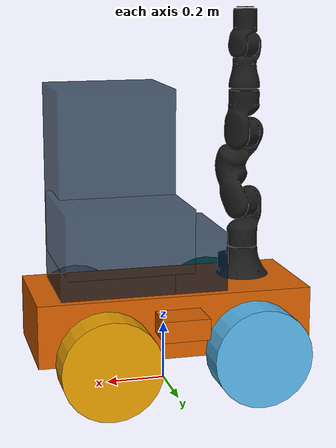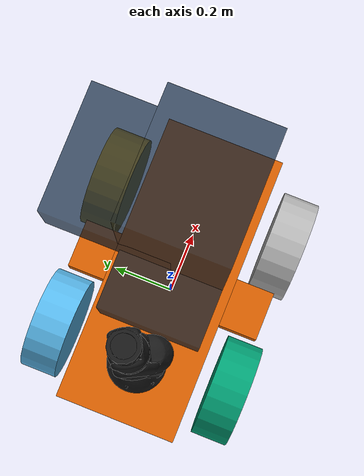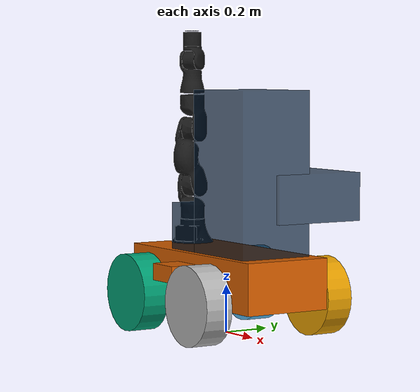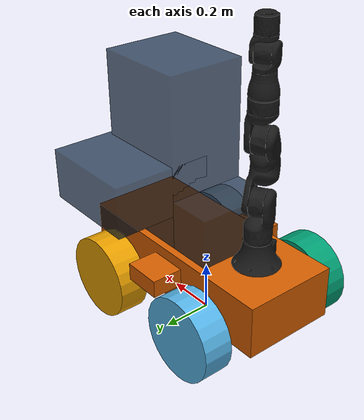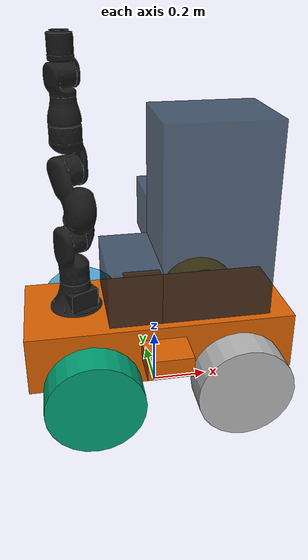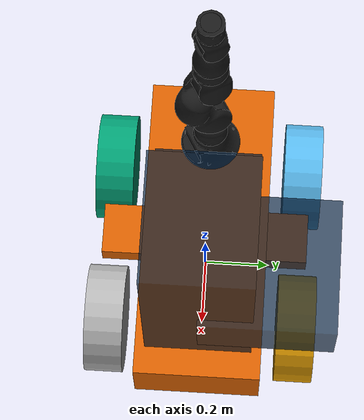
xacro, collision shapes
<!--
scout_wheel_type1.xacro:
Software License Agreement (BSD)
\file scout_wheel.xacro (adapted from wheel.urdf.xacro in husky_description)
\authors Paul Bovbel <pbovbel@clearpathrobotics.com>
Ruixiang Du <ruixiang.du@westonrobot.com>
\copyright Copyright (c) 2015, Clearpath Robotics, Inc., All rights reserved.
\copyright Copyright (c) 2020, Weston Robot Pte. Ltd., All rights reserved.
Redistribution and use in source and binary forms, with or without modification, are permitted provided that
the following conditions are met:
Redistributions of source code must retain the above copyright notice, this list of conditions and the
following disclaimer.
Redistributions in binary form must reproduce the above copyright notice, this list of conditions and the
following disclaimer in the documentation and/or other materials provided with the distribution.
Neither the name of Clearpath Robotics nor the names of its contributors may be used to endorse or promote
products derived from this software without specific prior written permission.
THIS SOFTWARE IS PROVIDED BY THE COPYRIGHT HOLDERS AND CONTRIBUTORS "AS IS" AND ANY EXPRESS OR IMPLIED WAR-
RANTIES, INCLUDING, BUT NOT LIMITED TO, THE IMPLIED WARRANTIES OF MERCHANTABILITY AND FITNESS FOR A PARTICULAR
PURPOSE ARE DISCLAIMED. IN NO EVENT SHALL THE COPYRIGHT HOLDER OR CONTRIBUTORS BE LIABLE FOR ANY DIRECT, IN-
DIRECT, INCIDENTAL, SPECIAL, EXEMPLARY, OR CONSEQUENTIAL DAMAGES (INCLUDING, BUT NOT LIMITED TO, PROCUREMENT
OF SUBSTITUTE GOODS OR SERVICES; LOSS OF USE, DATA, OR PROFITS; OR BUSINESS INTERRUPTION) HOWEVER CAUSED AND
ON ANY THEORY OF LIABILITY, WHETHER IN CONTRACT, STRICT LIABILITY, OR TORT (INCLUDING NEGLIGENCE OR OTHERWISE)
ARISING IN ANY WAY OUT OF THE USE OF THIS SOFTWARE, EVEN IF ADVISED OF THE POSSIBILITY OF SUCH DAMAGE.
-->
<?xml version="1.0"?>
<robot xmlns:xacro="http://www.ros.org/wiki/xacro" name="igus_rebel">

	<!-- Scout base selection -->
	<xacro:arg name="load_base" default="true" />

	<!-- Mount selection -->
	<xacro:arg name="mount" default="none" />

	<!-- Camera type selection -->
	<xacro:arg name="camera" default="none" />

	<!-- End effector type selection -->
	<xacro:arg name="end_effector" default="none" />

	<!-- Gazebo version -->
	<xacro:arg name="load_gazebo" default="false" />

	<!-- Controller settings, only enable a single one in the launch file -->
	<xacro:arg name="hardware_protocol" default="simulation" />

	<!-- Argument that tells if Moveit2 is used or not -->
	<xacro:arg name="moveit" default="false" />

	<!-- odometry source: world ground truth or wheels encoders -->
	<xacro:arg name="odometry_source" default="ground_truth" />

	<!-- Set both at 0.0 if collapsing is not interested in gazebo -->
	<xacro:property name="damping" value="0.0" />
	<xacro:property name="friction" value="0.0" />

	<!-- Load mobile robot base, load_base must be true -->
	<xacro:if value="$(arg load_base)">

		<!-- virtual joints acting as a link between base_link and igus_rebel_base_link -->
		<joint name="base_link_to_rebel_support" type="fixed">
			<parent link="base_link" />
			<child link="rebel_support" />
			<origin xyz="-0.28 0.0 0.125" rpy="0 0 ${pi}" />
		</joint>

		<link name="rebel_support" />

		<joint name="rebel_support_to_igus_rebel" type="fixed">
			<parent link="rebel_support" />
			<child link="igus_rebel_base_link" />
			<origin xyz="0.0 0.0 0.0" rpy="0 0 ${-pi/3}" />
		</joint>

		<!-- castle with tower mounting sensors, batteries, computer and everyhting else,
		attached to mobile_robot_base_link
		set with_basket to false to remove the extra box on the tower
		-->
		<xacro:include filename="$(find igus_rebel_description_ros2)/urdf/mobile_robot/castle.urdf" />
		<xacro:castle with_basket="true" />

		<!-- load scout robot -->
		<xacro:include
			filename="$(find agilex_scout)/urdf/mobile_robot/scout_v2.urdf.xacro" />
		<xacro:scout_v2
			load_gazebo="$(arg load_gazebo)" odometry_source="$(arg odometry_source)" />

	</xacro:if>

	<!-- Add base_link attachment when no mobile robot is loaded -->
	<xacro:unless value="$(arg load_base)">

		<link name="base_link" />
		<joint name="base_link_to_igus_rebel" type="fixed">
			<parent link="base_link" />
			<child link="igus_rebel_base_link" />
			<origin xyz="0.0 0.0 0.0" rpy="0.0 0.0 0.0" />
		</joint>

	</xacro:unless>

	<!-- load igus rebel with camera gripper and castle -->
	<xacro:include
		filename="$(find igus_rebel_description_ros2)/urdf/igus_rebel/igus_rebel.urdf.xacro" />
	<xacro:igus_rebel
		load_base="$(arg load_base)" mount="$(arg mount)" camera="$(arg camera)"
		end_effector="$(arg end_effector)" hardware_protocol="$(arg hardware_protocol)"
		load_gazebo="$(arg load_gazebo)" moveit="$(arg moveit)" />

</robot>

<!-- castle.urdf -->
<robot name="scout_v2" xmlns:xacro="http://ros.org/wiki/xacro">

	<xacro:macro name="castle" params="with_basket">

		<joint name="tower" type="fixed">
			<parent link="mobile_robot_base_link" />
			<child link="tower_link" />
			<origin rpy="0.0 0.0 0" xyz="0.0 0.0 0.1" />
			<axis xyz="0 0 -1" />
		</joint>

		<material name="dark_blue">
			<color rgba="0.0 ${25/255} ${51/255} 0.7" />
		</material>

		<link name="tower_link">
			<inertial>
				<mass value="1" />
				<inertia ixx="1" ixy="1" ixz="1" iyy="0" iyz="0" izz="0" />
			</inertial>
			<visual>
				<origin xyz="0.19 0.0 0.345" rpy="0.0 0.0 0.0" />
				<geometry>
					<box size="0.38 0.32 0.69" />
				</geometry>
				<material name="dark_blue" />
			</visual>
			<visual>
				<origin xyz="-0.09 0.0 0.105" rpy="0.0 0.0 0.0" />
				<geometry>
					<box size="0.18 0.32 0.21" />
				</geometry>
				<material name="dark_blue" />
			</visual>
			<collision>
				<origin xyz="0.19 0.0 0.345" rpy="0.0 0.0 0.0" />
				<geometry>
					<box size="0.38 0.32 0.69" />
				</geometry>
			</collision>
			<collision>
				<origin xyz="-0.09 0.0 0.105" rpy="0.0 0.0 0.0" />
				<geometry>
					<box size="0.18 0.32 0.21" />
				</geometry>
			</collision>
		</link>

		<xacro:if value="${with_basket}">

			<!-- add basket -->
			<joint name="basket_joint" type="fixed">
				<parent link="tower_link" />
				<child link="basket_link" />
				<origin rpy="0.0 0.0 0" xyz="0.2 0.2 0.25" />
				<axis xyz="0 0 -1" />
			</joint>

			<link name="basket_link">
				<inertial>
					<mass value="1" />
					<inertia ixx="1" ixy="1" ixz="1" iyy="0" iyz="0" izz="0" />
				</inertial>
				<visual>
					<origin xyz="0.0 0.0 0.0" rpy="0.0 0.0 0.0" />
					<geometry>
						<box size="0.4 0.4 0.2" />
					</geometry>
					<material name="dark_blue" />
				</visual>
				<collision>
					<origin xyz="0.0 0.0 0.0" rpy="0.0 0.0 0.0" />
					<geometry>
						<box size="0.4 0.4 0.2" />
					</geometry>
				</collision>
			</link>
		</xacro:if>

	</xacro:macro>

</robot>

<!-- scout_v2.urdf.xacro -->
<robot name="scout_v2" xmlns:xacro="http://ros.org/wiki/xacro">

	<xacro:macro name="scout_v2" params="odometry_source load_gazebo">

		<!-- Variables -->

		<!-- Collision boxes geometries -->
		<xacro:property name="base_x_size" value="0.9250000" />
		<xacro:property name="base_y_size" value="0.380000" />
		<xacro:property name="base_z_size" value="0.210000" />

		<!-- vehicle geometries -->
		<xacro:property name="wheelbase" value="0.498" />
		<xacro:property name="track" value="0.58306" />
		<xacro:property name="wheel_vertical_offset" value="-0.0702" />

		<xacro:property name="wheel_length" value="1.1653e-01" />
		<xacro:property name="wheel_radius" value="1.6459e-01" />

		<!-- virtual joints to link to ground and to odom -->
		<link name="base_footprint" />

		<joint name="base_footprint_to_base_link" type="fixed">
			<origin xyz="0 0 ${wheel_radius - wheel_vertical_offset}" rpy="0 0 0" />
			<parent link="base_footprint" />
			<child link="base_link" />
		</joint>

		<link name="base_link" />

		<joint name="base_link_to_mobile_robot" type="fixed">
			<origin xyz="0 0 0" rpy="0 0 0" />
			<parent link="base_link" />
			<child link="mobile_robot_base_link" />
		</joint>

		<!-- Base link -->
		<link name="mobile_robot_base_link">
			<visual>
				<origin xyz="0 0 0" rpy="0 0 0" />
				<geometry>
					<mesh
						filename="file://$(find agilex_scout)/meshes/mobile_robot/mobile_robot_base_link.dae" />
				</geometry>
			</visual>
			<collision>
				<origin xyz="0 0 0.008" rpy="0 0 0" />
				<geometry>
					<box size="${base_x_size} ${base_y_size} ${base_z_size}" />
				</geometry>
			</collision>
			<collision>
				<origin xyz="0 0 ${base_z_size/6}" rpy="0 0 0" />
				<geometry>
					<box size="${base_x_size/6} ${base_y_size*1.65} ${base_z_size/3}" />
				</geometry>
			</collision>
		</link>

		<link name="inertial_link">
			<inertial>
				<mass value="50" />
				<origin xyz="0.0 0.0 0.0" />
				<inertia ixx="2.288641" ixy="0" ixz="0" iyy="5.103976" iyz="0" izz="3.431465" />
			</inertial>
		</link>

		<joint name="inertial_joint" type="fixed">
			<origin xyz="0 0 0" rpy="0 0 0" />
			<parent link="mobile_robot_base_link" />
			<child link="inertial_link" />
		</joint>

		<!-- Scout wheel macros -->
		<xacro:include filename="$(find agilex_scout)/urdf/mobile_robot/scout_wheel_type1.xacro" />
		<xacro:include filename="$(find agilex_scout)/urdf/mobile_robot/scout_wheel_type2.xacro" />
		<!-- wheel labeled from 0 to 3, conter-clockwise, starting from front right wheel -->
		<!-- motor 1 and 2 (left side) are mechanically installed in a reversed direction -->
		<xacro:scout_wheel_type1 wheel_prefix="front_right" x="${wheelbase/2}" y="${-track/2}"
			z="${wheel_vertical_offset}" phi="0" />

		<xacro:scout_wheel_type2 wheel_prefix="front_left" x="${wheelbase/2}" y="${track/2}"
			z="${wheel_vertical_offset}" phi="0" />

		<xacro:scout_wheel_type1 wheel_prefix="rear_left" x="${-wheelbase/2}" y="${track/2}"
			z="${wheel_vertical_offset}" phi="0" />

		<xacro:scout_wheel_type2 wheel_prefix="rear_right" x="${-wheelbase/2}" y="${-track/2}"
			z="${wheel_vertical_offset}" phi="0" />

		<link name="front_mount" />

		<joint name="front_mount_joint" type="fixed">
			<origin xyz="0.325 0.0 0.112701" rpy="0 0 0" />
			<parent link="mobile_robot_base_link" />
			<child link="front_mount" />
		</joint>

		<link name="rear_mount" />

		<joint name="rear_mount_joint" type="fixed">
			<origin xyz="-0.325 0.0 0.112701" rpy="0 0 0" />
			<parent link="mobile_robot_base_link" />
			<child link="rear_mount" />
		</joint>

		<!-- Gazebo definitions  -->
		<xacro:if value="${load_gazebo}">
			<xacro:include filename="$(find agilex_scout)/urdf/mobile_robot/scout_v2.gazebo" />
		</xacro:if>

	</xacro:macro>

</robot>

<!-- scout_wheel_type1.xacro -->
<robot xmlns:xacro="http://ros.org/wiki/xacro" name="scout_v2">

	<xacro:macro name="scout_wheel_type1" params="wheel_prefix x y z phi">

		<link name="${wheel_prefix}_wheel_link">
			<inertial>
				<mass value="8" />
				<origin xyz="0 0 0" />
				<inertia ixx="0.1171" ixy="0" ixz="0" iyy="0.1361" iyz="0" izz="0.1171" />
			</inertial>
			<visual>
				<origin xyz="0 0 0" rpy="0 0 0" />
				<geometry>
					<mesh filename="file://$(find agilex_scout)/meshes/mobile_robot/wheel_type1.dae" />
				</geometry>
			</visual>
			<collision>
				<origin xyz="0 0 0" rpy="${pi/2} 0 0" />
				<geometry>
					<cylinder length="${wheel_length}" radius="${wheel_radius}" />
				</geometry>
				<surface>
					<contact>
						<ode>
							<min_depth>0.001</min_depth>
							<kp>1000000000.0</kp>
							<kd>0.0</kd>
						</ode>
					</contact>
					<friction>
						<ode>
							<mu>0.9</mu>
							<mu2>0.7</mu2>
							<fdir1>1 0 0</fdir1>
						</ode>
					</friction>
				</surface>
			</collision>
		</link>

		<!-- if gazebo is loaded, simulate the robot wheel rotations and broadcast the join states-->
		<xacro:if value="$(arg load_gazebo)">
			<joint name="${wheel_prefix}_wheel" type="continuous">
				<parent link="mobile_robot_base_link" />
				<child link="${wheel_prefix}_wheel_link" />
				<origin xyz="${x} ${y} ${z}" rpy="${phi} 0.0 0.0" />
				<axis xyz="0 1 0" rpy="0 0 0" />
				<dynamics damping="0.0" friction="20" />
			</joint>
		</xacro:if>

		<!-- if real robot is loaded, fixed wheels are used because no joint broadcasters are available -->
		<xacro:unless value="$(arg load_gazebo)">
			<joint name="${wheel_prefix}_wheel" type="fixed">
				<parent link="mobile_robot_base_link" />
				<child link="${wheel_prefix}_wheel_link" />
				<origin xyz="${x} ${y} ${z}" rpy="${phi} 0.0 0.0" />
				<axis xyz="0 1 0" rpy="0 0 0" />
			</joint>
		</xacro:unless>

	</xacro:macro>

</robot>

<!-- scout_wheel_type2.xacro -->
<robot xmlns:xacro="http://ros.org/wiki/xacro" name="scout_v2">

	<xacro:macro name="scout_wheel_type2" params="wheel_prefix x y z phi">

		<link name="${wheel_prefix}_wheel_link">
			<inertial>
				<mass value="8" />
				<origin xyz="0 0 0" />
				<inertia ixx="0.1171" ixy="0" ixz="0" iyy="0.1361" iyz="0" izz="0.1171" />
			</inertial>
			<visual>
				<origin xyz="0 0 0" rpy="0 0 0" />
				<geometry>
					<mesh filename="file://$(find agilex_scout)/meshes/mobile_robot/wheel_type2.dae" />
				</geometry>
			</visual>
			<collision>
				<origin xyz="0 0 0" rpy="${pi/2} 0 0" />
				<geometry>
					<cylinder length="${wheel_length}" radius="${wheel_radius}" />
				</geometry>
				<surface>
					<contact>
						<ode>
							<min_depth>0.001</min_depth>
							<kp>1000000000.0</kp>
							<kd>0.0</kd>
						</ode>
					</contact>
					<friction>
						<ode>
							<mu>0.9</mu>
							<mu2>0.7</mu2>
							<fdir1>1 0 0</fdir1>
						</ode>
					</friction>
				</surface>
			</collision>
		</link>

		<!-- if gazebo is loaded, simulate the robot wheel rotations and broadcast the join states-->
		<xacro:if value="$(arg load_gazebo)">
			<joint name="${wheel_prefix}_wheel" type="continuous">
				<parent link="mobile_robot_base_link" />
				<child link="${wheel_prefix}_wheel_link" />
				<origin xyz="${x} ${y} ${z}" rpy="${phi} 0.0 0.0" />
				<axis xyz="0 1 0" rpy="0 0 0" />
				<dynamics damping="0.0" friction="20" />
			</joint>
		</xacro:if>

		<!-- if real robot is loaded, fixed wheels are used because no joint broadcasters are available -->
		<xacro:unless value="$(arg load_gazebo)">
			<joint name="${wheel_prefix}_wheel" type="fixed">
				<parent link="mobile_robot_base_link" />
				<child link="${wheel_prefix}_wheel_link" />
				<origin xyz="${x} ${y} ${z}" rpy="${phi} 0.0 0.0" />
				<axis xyz="0 1 0" rpy="0 0 0" />
			</joint>
		</xacro:unless>

	</xacro:macro>

</robot>

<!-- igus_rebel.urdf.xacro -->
<robot xmlns:xacro="http://www.ros.org/wiki/xacro" name="igus_rebel">

	<!-- macro definition for the robot -->
	<xacro:macro name="igus_rebel" params="hardware_protocol load_gazebo moveit">
<!--		params="load_base mount camera end_effector hardware_protocol load_gazebo moveit">-->

		<!-- Gazebo macro -->
		<xacro:if value="${load_gazebo}">

			<xacro:include
					filename="$(find igus_rebel_description_ros2)/urdf/igus_rebel/igus_rebel.gazebo.xacro" />

			<!-- The plugin that control the robot in Ignition is loaded if Moveit2 will be used.
			The Moveit2 controller configuration file is directly passed as a parameter to this plugin -->
			<xacro:if value="${moveit}">
				<xacro:ign_ros2_control
						controller_parameters="$(find igus_rebel_moveit_config)/config/gazebo_controllers.yaml" />
			</xacro:if>

			<!-- The joint state publisher and the joint position controller are loaded if Moveit2
			is not used	because the robot is controllable directly from Ignition if some movement are needed -->
			<xacro:unless value="${moveit}">
				<xacro:ign_joint_state_publisher />
				<xacro:ign_joint_position_controller />
			</xacro:unless>

			<!--			&lt;!&ndash; The sensors used in Ignition are loaded only if a camera is attached &ndash;&gt;-->
			<!--				&lt;!&ndash; Since there is already a sensor plugin in the scout, if the scout is loaded-->
			<!--				the sensor plugin of the igus rebel is not loaded (temporary solution) &ndash;&gt;-->

		</xacro:if>

		<!-- Include and call rebel macro -->
		<xacro:include
			filename="$(find igus_rebel_description_ros2)/urdf/igus_rebel/igus_rebel.description.xacro" />
		<xacro:igus_rebel_description />

		<!-- controller macro -->
		<xacro:include
			filename="$(find igus_rebel_description_ros2)/urdf/igus_rebel/igus_rebel.control.xacro" />
		<xacro:igus_rebel_control hardware_protocol="${hardware_protocol}" />

<!--		&lt;!&ndash; Mount macros &ndash;&gt;-->

<!--		&lt;!&ndash; Camera macro &ndash;&gt;-->

	</xacro:macro>

</robot>

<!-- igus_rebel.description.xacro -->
<robot xmlns:xacro="http://www.ros.org/wiki/xacro" name="igus_rebel">

	<material name="dark_grey">
		<color rgba="${25/255.0} ${25/255.0} ${25/255.0} 1.000" />
	</material>

	<xacro:macro name="igus_rebel_description">
		<!-- Set both at 0.0 if collapsing is not interesting in gazebo -->
		<xacro:property name="damping" value="0.0" />
		<xacro:property name="friction" value="0.0" />

		<link name="igus_rebel_base_link">
			<visual>
				<geometry>
					<mesh
						filename="file://$(find igus_rebel_description_ros2)/meshes/igus_rebel/Joint0.dae" />
				</geometry>
				<material name="dark_grey" />
			</visual>
			<collision>
				<geometry>
					<mesh
						filename="file://$(find igus_rebel_description_ros2)/meshes/igus_rebel_mod/Joint0.stl"
						scale="0.0001 0.0001 0.0001" />
				</geometry>
			</collision>
			<inertial>
				<mass value="1.0" />
				<inertia ixx="1.0" ixy="0.0" ixz="0.0" iyy="1.0" iyz="0.0" izz="1.0" />
			</inertial>
		</link>

		<joint name="joint1" type="revolute">
			<parent link="igus_rebel_base_link" />
			<child link="link_1" />
			<origin rpy="0.0 0.0 0.0" xyz="0.0 0 0.103" />
			<axis xyz="0 0 1" />
			<limit effort="330.0" lower="${-pi*179/180}" upper="${pi*179/180}" velocity="${pi/4.0}" />
			<dynamics damping="${damping}" friction="${friction}" />
		</joint>
		<link name="link_1">
			<visual>
				<geometry>
					<mesh
						filename="file://$(find igus_rebel_description_ros2)/meshes/igus_rebel/Joint1.dae" />
				</geometry>
				<origin rpy="0 0 0" xyz="0 0 0" />
				<material name="dark_grey" />
			</visual>
			<collision>
				<geometry>
					<mesh
						filename="file://$(find igus_rebel_description_ros2)/meshes/igus_rebel_mod/Joint1.stl"
						scale="0.0001 0.0001 0.0001" />
				</geometry>
				<origin rpy="0 0 0" xyz="0 0 0" />
			</collision>
			<inertial>
				<mass value="0.1" />
				<inertia ixx="0.03" ixy="0.0" ixz="0.0" iyy="0.03" iyz="0.0" izz="0.03" />
			</inertial>
		</link>

		<joint name="joint2" type="revolute">
			<parent link="link_1" />
			<child link="link_2" />
			<origin rpy="0.0 0.0 0.0" xyz="0.0 0 0.149" />
			<axis xyz="0 1 0" />
			<limit effort="330.0" lower="${-pi*80/180}" upper="${pi*140/180}" velocity="${pi/4.0}" />
			<dynamics damping="${damping}" friction="${friction}" />
		</joint>

		<link name="link_2">
			<visual>
				<geometry>
					<mesh
						filename="file://$(find igus_rebel_description_ros2)/meshes/igus_rebel/Joint2.dae" />
				</geometry>
				<origin rpy="0 0 0" xyz="0 0 0" />
				<material name="dark_grey" />
			</visual>
			<collision>
				<geometry>
					<mesh
						filename="file://$(find igus_rebel_description_ros2)/meshes/igus_rebel_mod/Joint2.stl"
						scale="0.0001 0.0001 0.0001" />
				</geometry>
				<origin rpy="0 0 0" xyz="0 0 0" />
			</collision>
			<inertial>
				<mass value="0.1" />
				<inertia ixx="0.03" ixy="0.0" ixz="0.0" iyy="0.03" iyz="0.0" izz="0.03" />
			</inertial>
		</link>

		<joint name="joint3" type="revolute">
			<parent link="link_2" />
			<child link="link_5" />
			<origin rpy="0.0 0.0 0.0" xyz="0.0 0.0 0.2384" />
			<axis xyz="0 1 0" />
			<limit effort="330.0" lower="${-pi*80/180}" upper="${pi*140/180}" velocity="${pi/4.0}" />
			<dynamics damping="${damping}" friction="${friction}" />
		</joint>

		<link name="link_5">
			<visual>
				<geometry>
					<mesh
						filename="file://$(find igus_rebel_description_ros2)/meshes/igus_rebel/Joint3.dae" />
				</geometry>
				<origin rpy="0 0 0" xyz="0 0 0" />
				<material name="dark_grey" />
			</visual>
			<collision>
				<geometry>
					<mesh
						filename="file://$(find igus_rebel_description_ros2)/meshes/igus_rebel_mod/Joint3.stl"
						scale="0.0001 0.0001 0.0001" />
				</geometry>
				<origin rpy="0 0 0" xyz="0 0 0" />
			</collision>
			<inertial>
				<mass value="0.1" />
				<inertia ixx="0.03" ixy="0.0" ixz="0.0" iyy="0.03" iyz="0.0" izz="0.03" />
			</inertial>
		</link>

		<joint name="joint4" type="revolute">
			<parent link="link_5" />
			<child link="link_6" />
			<origin rpy="0.0 0.0 0.0" xyz="0.0 0.0 0.127" />
			<axis xyz="0 0 1" />
			<limit effort="330.0" lower="${-pi*179/180}" upper="${pi*179/180}" velocity="${pi/4.0}" />
			<dynamics damping="${damping}" friction="${friction}" />
		</joint>

		<link name="link_6">
			<visual>
				<geometry>
					<mesh
						filename="file://$(find igus_rebel_description_ros2)/meshes/igus_rebel/Joint4.dae" />
				</geometry>
				<origin rpy="0 0 0" xyz="0 0 0" />
				<material name="dark_grey" />
			</visual>
			<collision>
				<geometry>
					<mesh
						filename="file://$(find igus_rebel_description_ros2)/meshes/igus_rebel_mod/Joint4.stl"
						scale="0.0001 0.0001 0.0001" />
				</geometry>
				<origin rpy="0 0 0" xyz="0 0 0" />
			</collision>
			<inertial>
				<mass value="0.1" />
				<inertia ixx="0.03" ixy="0.0" ixz="0.0" iyy="0.03" iyz="0.0" izz="0.03" />
			</inertial>
		</link>

		<joint name="joint5" type="revolute">
			<parent link="link_6" />
			<child link="link_7" />
			<origin rpy="0.0 0.0 0.0" xyz="0.0 0 ${0.14 + 0.03}" />
			<axis xyz="0 1 0" />
			<limit effort="330.0" lower="${-pi/2.0}" upper="${pi/2.0}" velocity="${pi/4.0}" />
			<dynamics damping="${damping}" friction="${friction}" />
		</joint>

		<link name="link_7">
			<visual>
				<geometry>
					<mesh
						filename="file://$(find igus_rebel_description_ros2)/meshes/igus_rebel/Joint5.dae" />
				</geometry>
				<origin rpy="0 0 0" xyz="0 0 0" />
				<material name="dark_grey" />
			</visual>
			<collision>
				<geometry>
					<mesh
						filename="file://$(find igus_rebel_description_ros2)/meshes/igus_rebel_mod/Joint5.stl"
						scale="0.0001 0.0001 0.0001" />
				</geometry>
				<origin rpy="0 0 0" xyz="0 0 0" />
			</collision>
			<inertial>
				<mass value="0.1" />
				<inertia ixx="0.03" ixy="0.0" ixz="0.0" iyy="0.03" iyz="0.0" izz="0.03" />
			</inertial>
		</link>

		<joint name="joint6" type="revolute">
			<parent link="link_7" />
			<child link="link_8" />
			<origin rpy="0.0 0.0 0.0" xyz="0.0 0 0.126" />
			<axis xyz="0 0 1" />
			<limit effort="330.0" lower="${-pi*179/180}" upper="${pi*179/180}" velocity="${pi/4.0}" />
			<dynamics damping="${damping}" friction="${friction}" />
		</joint>

		<link name="link_8">
			<visual>
				<geometry>
					<mesh
						filename="file://$(find igus_rebel_description_ros2)/meshes/igus_rebel/Joint6.dae" />
				</geometry>
				<origin rpy="0 0 0" xyz="0.0 0 0" />
				<material name="dark_grey" />
			</visual>
			<collision>
				<geometry>
					<mesh
						filename="file://$(find igus_rebel_description_ros2)/meshes/igus_rebel_mod/Joint6.stl"
						scale="0.0001 0.0001 0.0001" />
				</geometry>
				<origin rpy="0 0 0" xyz="0.0 0 0" />
			</collision>
			<inertial>
				<mass value="0.1" />
				<inertia ixx="0.03" ixy="0.0" ixz="0.0" iyy="0.03" iyz="0.0" izz="0.03" />
			</inertial>
		</link>

		<joint name="joint7" type="fixed">
			<parent link="link_8" />
			<child link="flange" />
			<origin rpy="0.0 ${-pi/2} 0.0" xyz="0.0 0.0 0.0" />
			<axis xyz="0 0 0" />
			<dynamics damping="${damping}" friction="${friction}" />
		</joint>

		<link name="flange" />

	</xacro:macro>
</robot>
